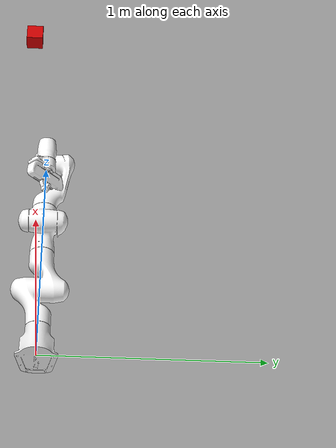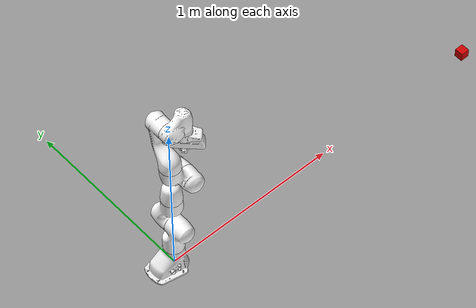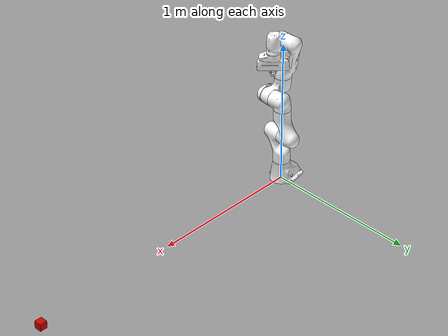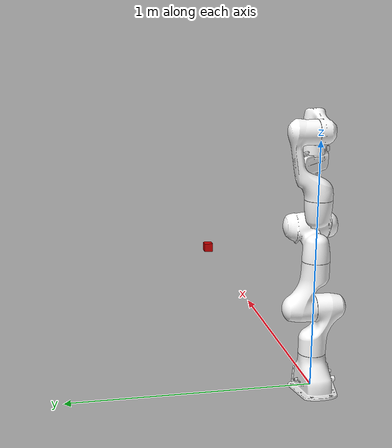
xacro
<?xml version="1.0"?>
<robot name="panda" xmlns:xacro="http://www.ros.org/wiki/xacro">

    <xacro:property name="PI" value="3.1415926535897931"/>

    <xacro:include filename="$(find panda_description)/urdf/panda.gazebo"/>
    <xacro:include filename="$(find panda_description)/urdf/materials.xacro"/>
    <xacro:include filename="$(find panda_description)/urdf/visuals.xacro"/>
    <xacro:include filename="$(find panda_description)/urdf/camera.xacro"/>
    <xacro:include filename="$(find panda_description)/urdf/transmission.xacro"/>

    <link name="world"/>
    <joint name="fixed" type="fixed">
        <parent link="world"/>
        <child link="panda_link0"/>
    </joint>

</robot>

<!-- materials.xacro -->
<robot xmlns:xacro="http://www.ros.org/wiki/xacro">
    <material name="white">
        <color rgba="1 1 1 1"/>
  </material>
  <material name="red">
    <color rgba="0.8 0.0 0.0 1.0"/>
  </material>
</robot>

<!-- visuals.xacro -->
<robot xmlns:xacro="http://www.ros.org/wiki/xacro">
    <link name="panda_link0">
    <inertial>
      <mass value="0.1" />
      <origin xyz="0 0 0" rpy="0 0 0"/>
      <inertia ixx="0.05" ixy="0" ixz="0" iyy="0.05" iyz="0" izz="0.05" />
    </inertial>
    <visual name="panda_link0_visual">
      <origin xyz="0 0 0" rpy="0 0 0"/>
      <geometry>
        <mesh filename="package://panda_description/meshes/visual/link0.dae"/>
      </geometry>
    </visual>
    <collision>
      <geometry>
        <mesh filename="package://panda_description/meshes/collision/link0.obj"/>
      </geometry>
    </collision>
  </link>

  <link name="panda_link1">
    <inertial>
      <mass value="0.1" />
      <origin xyz="0 0 0" rpy="0 0 0"/>
      <inertia ixx="0.05" ixy="0" ixz="0" iyy="0.05" iyz="0" izz="0.05" />
    </inertial>
    <visual>
      <origin xyz="0 0 0" rpy="0 0 0"/>
      <geometry>
        <mesh filename="package://panda_description/meshes/visual/link1.dae"/>
      </geometry>
      <material name="white"/>
    </visual>
    <collision>
      <geometry>
        <mesh filename="package://panda_description/meshes/collision/link1.obj"/>
      </geometry>
      <material name="white"/>
    </collision>
  </link>

  <joint name="panda_joint1" type="revolute">
    <safety_controller k_position="100.0" k_velocity="40.0" soft_lower_limit="-2.8973" soft_upper_limit="2.8973"/>
    <origin rpy="0 0 0" xyz="0 0 0.333"/>
    <parent link="panda_link0"/>
    <child link="panda_link1"/>
    <axis xyz="0 0 1"/>
    <limit effort="87" lower="-2.9671" upper="2.9671" velocity="2.1750"/>
  </joint>

  <link name="panda_link2">
    <inertial>
      <mass value="0.1" />
      <origin xyz="0 0 0" rpy="0 0 0"/>
      <inertia ixx="0.05" ixy="0" ixz="0" iyy="0.05" iyz="0" izz="0.05" />
    </inertial>
    <visual>
      <origin xyz="0 0 0" rpy="0 0 0"/>
      <geometry>
        <mesh filename="package://panda_description/meshes/visual/link2.dae"/>
      </geometry>
      <material name="white"/>
    </visual>
    <collision>
      <geometry>
        <mesh filename="package://panda_description/meshes/collision/link2.obj"/>
      </geometry>
      <material name="white"/>
    </collision>
  </link>

  <joint name="panda_joint2" type="revolute">
    <safety_controller k_position="100.0" k_velocity="40.0" soft_lower_limit="-1.7628" soft_upper_limit="1.7628"/>
    <origin rpy="-1.57079632679 0 0" xyz="0 0 0"/>
    <parent link="panda_link1"/>
    <child link="panda_link2"/>
    <axis xyz="0 0 1"/>
    <limit effort="87" lower="-1.8326" upper="1.8326" velocity="2.1750"/>
  </joint>

  <link name="panda_link3">
    <inertial>
      <mass value="0.1" />
      <origin xyz="0 0 0" rpy="0 0 0"/>
      <inertia ixx="0.05" ixy="0" ixz="0" iyy="0.05" iyz="0" izz="0.05" />
    </inertial>
    <visual>
      <origin xyz="0 0 0" rpy="0 0 0"/>
      <geometry>
        <mesh filename="package://panda_description/meshes/visual/link3.dae"/>
      </geometry>
      <material name="white"/>
    </visual>
    <collision>
      <geometry>
        <mesh filename="package://panda_description/meshes/collision/link3.obj"/>
      </geometry>
      <material name="white"/>
    </collision>
  </link>

  <joint name="panda_joint3" type="revolute">
    <safety_controller k_position="100.0" k_velocity="40.0" soft_lower_limit="-2.8973" soft_upper_limit="2.8973"/>
    <origin rpy="1.57079632679 0 0" xyz="0 -0.316 0"/>
    <parent link="panda_link2"/>
    <child link="panda_link3"/>
    <axis xyz="0 0 1"/>
    <limit effort="87" lower="-2.9671" upper="2.9671" velocity="2.1750"/>
  </joint>

  <link name="panda_link4">
    <inertial>
      <mass value="0.1" />
      <origin xyz="0 0 0" rpy="0 0 0"/>
      <inertia ixx="0.05" ixy="0" ixz="0" iyy="0.05" iyz="0" izz="0.05" />
    </inertial>
    <visual>
      <origin xyz="0 0 0" rpy="0 0 0"/>
      <geometry>
        <mesh filename="package://panda_description/meshes/visual/link4.dae"/>
      </geometry>
      <material name="white"/>
    </visual>
    <collision>
      <geometry>
        <mesh filename="package://panda_description/meshes/collision/link4.obj"/>
      </geometry>
      <material name="white"/>
    </collision>
  </link>

  <joint name="panda_joint4" type="revolute">
    <safety_controller k_position="100.0" k_velocity="40.0" soft_lower_limit="-3.0718" soft_upper_limit="-0.0698"/>
    <origin rpy="1.57079632679 0 0" xyz="0.0825 0 0"/>
    <parent link="panda_link3"/>
    <child link="panda_link4"/>
    <axis xyz="0 0 1"/>
    <limit effort="87" lower="-3.1416" upper="0.0" velocity="2.1750"/>
  </joint>

  <link name="panda_link5">
    <inertial>
      <mass value="0.1" />
      <origin xyz="0 0 0" rpy="0 0 0"/>
      <inertia ixx="0.05" ixy="0" ixz="0" iyy="0.05" iyz="0" izz="0.05" />
    </inertial>
    <visual>
      <origin xyz="0 0 0" rpy="0 0 0"/>
      <geometry>
        <mesh filename="package://panda_description/meshes/visual/link5.dae"/>
      </geometry>
      <material name="white"/>
    </visual>
    <collision>
      <geometry>
        <mesh filename="package://panda_description/meshes/collision/link5.obj"/>
      </geometry>
      <material name="white"/>
    </collision>
  </link>

  <joint name="panda_joint5" type="revolute">
    <safety_controller k_position="100.0" k_velocity="40.0" soft_lower_limit="-2.8973" soft_upper_limit="2.8973"/>
    <origin rpy="-1.57079632679 0 0" xyz="-0.0825 0.384 0"/>
    <parent link="panda_link4"/>
    <child link="panda_link5"/>
    <axis xyz="0 0 1"/>
    <limit effort="12" lower="-2.9671" upper="2.9671" velocity="2.6100"/>
  </joint>

  <link name="panda_link6">
    <inertial>
      <mass value="0.1" />
      <origin xyz="0 0 0" rpy="0 0 0"/>
      <inertia ixx="0.05" ixy="0" ixz="0" iyy="0.05" iyz="0" izz="0.05" />
    </inertial>
    <visual>
      <origin xyz="0 0 0" rpy="0 0 0"/>
      <geometry>
        <mesh filename="package://panda_description/meshes/visual/link6.dae"/>
      </geometry>
      <material name="white"/>
    </visual>
    <collision>
      <geometry>
        <mesh filename="package://panda_description/meshes/collision/link6.obj"/>
      </geometry>
      <material name="white"/>
    </collision>
  </link>

  <joint name="panda_joint6" type="revolute">
    <safety_controller k_position="100.0" k_velocity="40.0" soft_lower_limit="-0.0175" soft_upper_limit="3.7525"/>
    <origin rpy="1.57079632679 0 0" xyz="0 0 0"/>
    <parent link="panda_link5"/>
    <child link="panda_link6"/>
    <axis xyz="0 0 1"/>
    <limit effort="12" lower="-0.0873" upper="3.8223" velocity="2.6100"/>
  </joint>

  <link name="panda_link7">
    <inertial>
      <mass value="0.1" />
      <origin xyz="0 0 0" rpy="0 0 0"/>
      <inertia ixx="0.05" ixy="0" ixz="0" iyy="0.05" iyz="0" izz="0.05" />
    </inertial>
    <visual>
      <origin xyz="0 0 0" rpy="0 0 0"/>
      <geometry>
        <mesh filename="package://panda_description/meshes/visual/link7.dae"/>
      </geometry>
      <material name="white"/>
    </visual>
    <collision>
      <geometry>
        <mesh filename="package://panda_description/meshes/collision/link7.obj"/>
      </geometry>
      <material name="white"/>
    </collision>
  </link>

  <joint name="panda_joint7" type="revolute">
    <safety_controller k_position="100.0" k_velocity="40.0" soft_lower_limit="-2.8973" soft_upper_limit="2.8973"/>
    <origin rpy="1.57079632679 0 0" xyz="0.088 0 0"/>
    <parent link="panda_link6"/>
    <child link="panda_link7"/>
    <axis xyz="0 0 1"/>
    <limit effort="12" lower="-2.9671" upper="2.9671" velocity="2.6100"/>
  </joint>

  <link name="panda_link8"/>

  <joint name="panda_joint8" type="fixed">
    <origin rpy="0 0 0" xyz="0 0 0.107"/>
    <parent link="panda_link7"/>
    <child link="panda_link8"/>
    <axis xyz="0 0 0"/>
  </joint>

  <link name="panda_hand">
    <inertial>
      <mass value="0.1" />
      <origin xyz="0 0 0" rpy="0 0 0"/>
      <inertia ixx="0.05" ixy="0" ixz="0" iyy="0.05" iyz="0" izz="0.05" />
    </inertial>
    <visual>
      <origin xyz="0 0 0" rpy="0 0 0"/>
      <geometry>
        <mesh filename="package://panda_description/meshes/visual/hand.dae"/>
      </geometry>
      <material name="white"/>
    </visual>
    <collision>
      <geometry>
        <mesh filename="package://panda_description/meshes/collision/hand.obj"/>
      </geometry>
      <material name="white"/>
    </collision>
  </link>

  <joint name="panda_hand_joint" type="fixed">
    <parent link="panda_link8"/>
    <child link="panda_hand"/>
    <origin rpy="0 0 -0.785398163397" xyz="0 0 0"/>
  </joint>

  <link name="panda_leftfinger">
    <inertial>
      <mass value="0.1" />
      <origin xyz="0 0 0" rpy="0 0 0"/>
      <inertia ixx="0.05" ixy="0" ixz="0" iyy="0.05" iyz="0" izz="0.05" />
    </inertial>
    <visual>
      <origin xyz="0 0 0" rpy="0 0 0"/>
      <geometry>
        <mesh filename="package://panda_description/meshes/visual/finger.dae"/>
      </geometry>
      <material name="white"/>
    </visual>
    <collision>
      <geometry>
        <mesh filename="package://panda_description/meshes/collision/finger.obj"/>
      </geometry>
      <material name="white"/>
    </collision>
  </link>

  <link name="panda_rightfinger">
    <inertial>
      <mass value="0.1" />
      <origin xyz="0 0 0" rpy="0 0 0"/>
      <inertia ixx="0.05" ixy="0" ixz="0" iyy="0.05" iyz="0" izz="0.05" />
    </inertial>
    <visual>
      <origin xyz="0 0 0" rpy="0 0 0"/>
      <geometry>
        <mesh filename="package://panda_description/meshes/visual/finger.dae"/>
      </geometry>
      <material name="white"/>
    </visual>
    <collision>
      <geometry>
        <mesh filename="package://panda_description/meshes/collision/finger.obj"/>
      </geometry>
      <material name="white"/>
    </collision>
  </link>

  <joint name="panda_finger_joint1" type="prismatic">
    <parent link="panda_hand"/>
    <child link="panda_leftfinger"/>
    <origin rpy="0 0 0" xyz="0 0 0.0584"/>
    <axis xyz="0 1 0"/>
    <limit effort="20" lower="0.0" upper="0.04" velocity="0.2"/>
  </joint>
  <joint name="panda_finger_joint2" type="prismatic">
    <parent link="panda_hand"/>
    <child link="panda_rightfinger"/>
    <origin rpy="0 0 ${PI}" xyz="0 0 0.0584"/>
    <axis xyz="0 -1 0"/>
    <limit effort="20" lower="0.0" upper="0.04" velocity="0.2"/>
    <mimic joint="panda_finger_joint1"/>
  </joint>

</robot>

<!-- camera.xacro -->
<robot xmlns:xacro="http://www.ros.org/wiki/xacro">

  <!-- Camera -->
  <link name="camera_phi_link">
    <inertial>
      <mass value="1" />
      <origin xyz="0 0 0" rpy="0 0 0"/>
      <inertia ixx="0.01" ixy="0" ixz="0" iyy="0.01" iyz="0" izz="0.01" />
    </inertial>
  </link>
  <link name="camera_theta_link">
    <inertial>
      <mass value="0.1" />
      <origin xyz="0 0 0" rpy="0 0 0"/>
      <inertia ixx="0.01" ixy="0" ixz="0" iyy="0.01" iyz="0" izz="0.01" />
    </inertial>
  </link>

  <link name="camera_link">
    <collision>
      <origin xyz="0 0 0" rpy="0 0 0"/>
      <geometry>
	      <box size="0.05 0.05 0.05"/>
      </geometry>
    </collision>

    <visual>
      <origin xyz="0 0 0" rpy="0 0 0"/>
      <geometry>
	      <box size="0.05 0.05 0.05"/>
      </geometry>
      <material name="red"/>
    </visual>

    <inertial>
      <mass value="0.1" />
      <origin xyz="0 0 0" rpy="0 0 0"/>
      <inertia ixx="0.01" ixy="0" ixz="0" iyy="0.01" iyz="0" izz="0.01" />
    </inertial>
  </link>

  <joint name="camera_phi_joint" type="revolute">
    <axis xyz="0 0 1" />
    <origin xyz="0 0 0" rpy="0 0 0"/>
    <parent link="world"/>
    <child link="camera_phi_link"/>
    <limit effort="87" lower="-3.14159" upper="3.14159" velocity="2.1750"/>
  </joint>

  <joint name="camera_theta_joint" type="revolute">
    <axis xyz="0 1 0" />
    <origin xyz="0 0 0" rpy="0 0 0"/>
    <parent link="camera_phi_link"/>
    <child link="camera_theta_link"/>
    <limit effort="87" lower="-3.14159" upper="3.14159" velocity="2.1750"/>
  </joint>

  <joint name="camera_joint" type="fixed">
    <axis xyz="0 0 1" />
    <origin xyz="2 0 0" rpy="0 0 ${PI}"/>
    <parent link="camera_theta_link"/>
    <child link="camera_link"/>
  </joint>

  <link name="camera_link_optical">
  </link>
  <joint name="camera_optical_joint" type="fixed">
    <origin xyz="0 0 0" rpy="${-PI/2} 0 ${PI/2}"/>
    <parent link="camera_link"/>
    <child link="camera_link_optical"/>
  </joint>

</robot>
